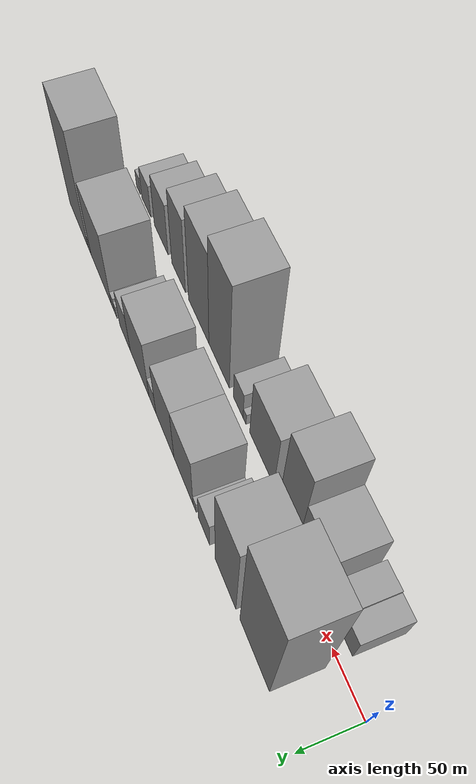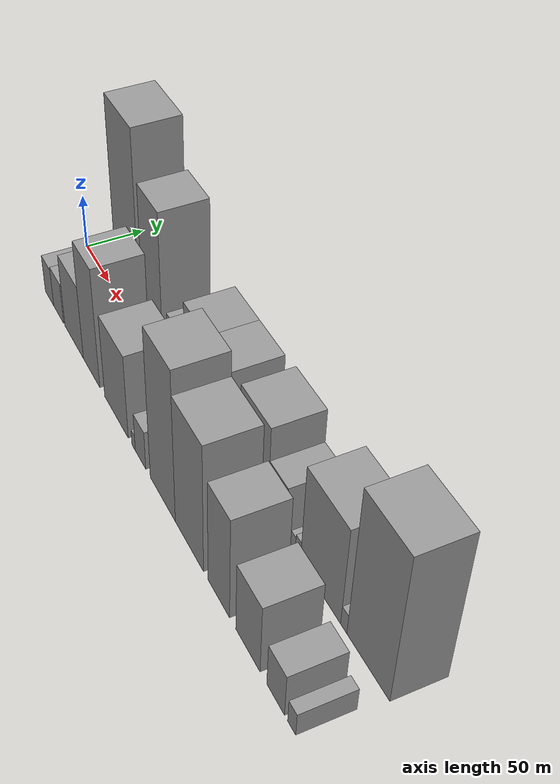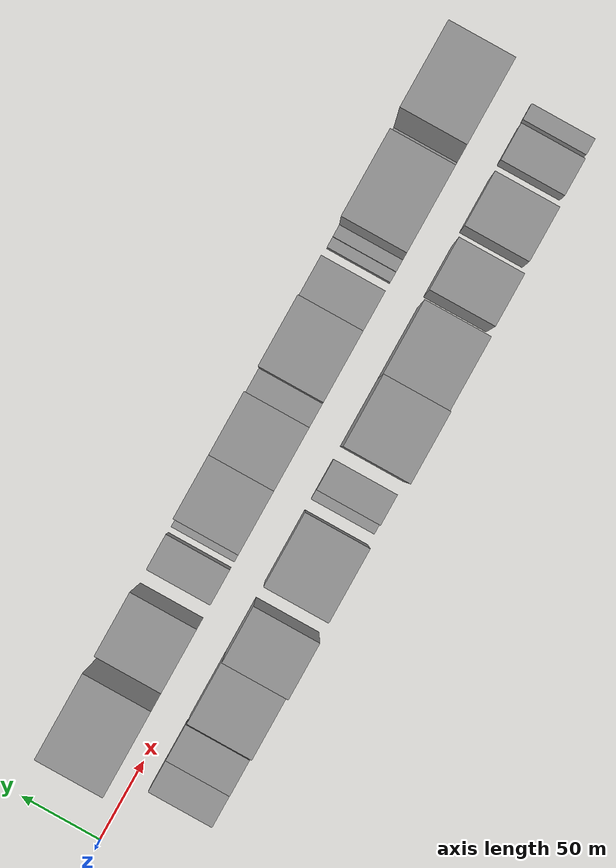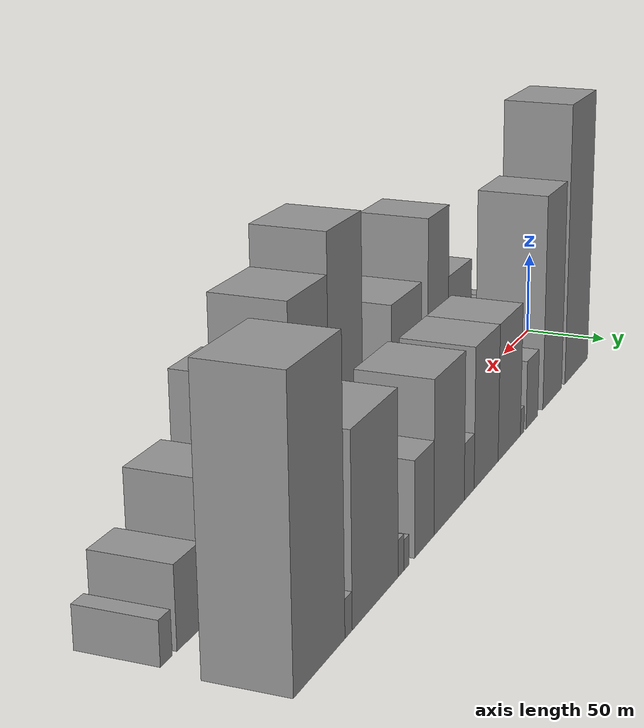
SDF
<sdf version="1.6">
 <world name="default">
  <scene>
   <sky><clouds><speed>12</speed></clouds></sky>
   <ambient>0.4 0.4 0.4 1</ambient>
   <background>0.7 0.7 0.7 1</background>
   <shadows>1</shadows>
  </scene>
  <gravity>0 0 -9.8066</gravity>
  <magnetic_field>6e-06 2.3e-05 -4.2e-05</magnetic_field>
  <physics default="0" name="default_physics" type="ode">
   <ode>
    <solver>
     <type>quick</type>
     <iters>10</iters>
     <sor>1.0</sor>
     <use_dynamic_moi_rescaling>0</use_dynamic_moi_rescaling>
    </solver>
    <constraints>
     <cfm>0</cfm>
     <erp>0.2</erp>
     <contact_max_correcting_vel>100</contact_max_correcting_vel>
     <contact_surface_layer>0.001</contact_surface_layer>
    </constraints>
   </ode>
   <max_step_size>0.004</max_step_size>
   <real_time_factor>1</real_time_factor>
   <real_time_update_rate>250</real_time_update_rate>
  </physics>
  <light name="sun" type="directional">
   <pose>0 0 10 0 0 0</pose>
   <diffuse>0.8 0.8 0.8 1</diffuse>
   <specular>0.2 0.2 0.2 1</specular>
   <attenuation>
    <range>1000</range>
    <constant>0.9</constant>
    <linear>0.01</linear>
    <quadratic>0.001</quadratic>
   </attenuation>
   <direction>-0.5 0.1 -0.9</direction>
  </light>
  <model name="building_1">
   <static>1</static>
   <pose>65.2000 30.0000 0 0.000000 0.000000 1.570796</pose>
   <link name="link">
    <pose>0 0 82.50 0 0 0</pose>
    <collision name="collision"><geometry><box><size>40.0000 50.4000 165.0000</size></box></geometry></collision>
    <visual name="visual">
     <cast_shadows>0</cast_shadows>
     <geometry><box><size>40.0000 50.4000 165.0000</size></box></geometry>
     <material>
      <script>
       <uri>model://grey_wall/materials/scripts</uri>
       <uri>model://grey_wall/materials/textures</uri>
       <name>vrc/grey_wall</name>
      </script>
     </material>
    </visual>
   </link>
  </model>
  <model name="building_2">
   <static>1</static>
   <pose>116.5637 30.0000 0 0.000000 0.000000 1.570796</pose>
   <link name="link">
    <pose>0 0 61.50 0 0 0</pose>
    <collision name="collision"><geometry><box><size>40.0000 38.3274 123.0000</size></box></geometry></collision>
    <visual name="visual">
     <cast_shadows>0</cast_shadows>
     <geometry><box><size>40.0000 38.3274 123.0000</size></box></geometry>
     <material>
      <script>
       <uri>model://grey_wall/materials/scripts</uri>
       <uri>model://grey_wall/materials/textures</uri>
       <name>vrc/grey_wall</name>
      </script>
     </material>
    </visual>
   </link>
  </model>
  <model name="building_3">
   <static>1</static>
   <pose>156.7845 30.0000 0 0.000000 0.000000 1.570796</pose>
   <link name="link">
    <pose>0 0 19.50 0 0 0</pose>
    <collision name="collision"><geometry><box><size>40.0000 22.1142 39.0000</size></box></geometry></collision>
    <visual name="visual">
     <cast_shadows>0</cast_shadows>
     <geometry><box><size>40.0000 22.1142 39.0000</size></box></geometry>
     <material>
      <script>
       <uri>model://grey_wall/materials/scripts</uri>
       <uri>model://grey_wall/materials/textures</uri>
       <name>vrc/grey_wall</name>
      </script>
     </material>
    </visual>
   </link>
  </model>
  <model name="building_4">
   <static>1</static>
   <pose>175.0628 30.0000 0 0.000000 0.000000 1.570796</pose>
   <link name="link">
    <pose>0 0 7.50 0 0 0</pose>
    <collision name="collision"><geometry><box><size>40.0000 6.4425 15.0000</size></box></geometry></collision>
    <visual name="visual">
     <cast_shadows>0</cast_shadows>
     <geometry><box><size>40.0000 6.4425 15.0000</size></box></geometry>
     <material>
      <script>
       <uri>model://grey_wall/materials/scripts</uri>
       <uri>model://grey_wall/materials/textures</uri>
       <name>vrc/grey_wall</name>
      </script>
     </material>
    </visual>
   </link>
  </model>
  <model name="building_5">
   <static>1</static>
   <pose>197.8772 30.0000 0 0.000000 0.000000 1.570796</pose>
   <link name="link">
    <pose>0 0 37.50 0 0 0</pose>
    <collision name="collision"><geometry><box><size>40.0000 39.1862 75.0000</size></box></geometry></collision>
    <visual name="visual">
     <cast_shadows>0</cast_shadows>
     <geometry><box><size>40.0000 39.1862 75.0000</size></box></geometry>
     <material>
      <script>
       <uri>model://grey_wall/materials/scripts</uri>
       <uri>model://grey_wall/materials/textures</uri>
       <name>vrc/grey_wall</name>
      </script>
     </material>
    </visual>
   </link>
  </model>
  <model name="building_6">
   <static>1</static>
   <pose>236.9656 30.0000 0 0.000000 0.000000 1.570796</pose>
   <link name="link">
    <pose>0 0 37.50 0 0 0</pose>
    <collision name="collision"><geometry><box><size>40.0000 38.9905 75.0000</size></box></geometry></collision>
    <visual name="visual">
     <cast_shadows>0</cast_shadows>
     <geometry><box><size>40.0000 38.9905 75.0000</size></box></geometry>
     <material>
      <script>
       <uri>model://grey_wall/materials/scripts</uri>
       <uri>model://grey_wall/materials/textures</uri>
       <name>vrc/grey_wall</name>
      </script>
     </material>
    </visual>
   </link>
  </model>
  <model name="building_7">
   <static>1</static>
   <pose>264.0834 30.0000 0 0.000000 0.000000 1.570796</pose>
   <link name="link">
    <pose>0 0 15.00 0 0 0</pose>
    <collision name="collision"><geometry><box><size>40.0000 15.2452 30.0000</size></box></geometry></collision>
    <visual name="visual">
     <cast_shadows>0</cast_shadows>
     <geometry><box><size>40.0000 15.2452 30.0000</size></box></geometry>
     <material>
      <script>
       <uri>model://grey_wall/materials/scripts</uri>
       <uri>model://grey_wall/materials/textures</uri>
       <name>vrc/grey_wall</name>
      </script>
     </material>
    </visual>
   </link>
  </model>
  <model name="building_8">
   <static>1</static>
   <pose>293.6184 30.0000 0 0.000000 0.000000 1.570796</pose>
   <link name="link">
    <pose>0 0 39.00 0 0 0</pose>
    <collision name="collision"><geometry><box><size>40.0000 43.8249 78.0000</size></box></geometry></collision>
    <visual name="visual">
     <cast_shadows>0</cast_shadows>
     <geometry><box><size>40.0000 43.8249 78.0000</size></box></geometry>
     <material>
      <script>
       <uri>model://grey_wall/materials/scripts</uri>
       <uri>model://grey_wall/materials/textures</uri>
       <name>vrc/grey_wall</name>
      </script>
     </material>
    </visual>
   </link>
  </model>
  <model name="building_9">
   <static>1</static>
   <pose>328.5012 30.0000 0 0.000000 0.000000 1.570796</pose>
   <link name="link">
    <pose>0 0 24.00 0 0 0</pose>
    <collision name="collision"><geometry><box><size>40.0000 25.9407 48.0000</size></box></geometry></collision>
    <visual name="visual">
     <cast_shadows>0</cast_shadows>
     <geometry><box><size>40.0000 25.9407 48.0000</size></box></geometry>
     <material>
      <script>
       <uri>model://grey_wall/materials/scripts</uri>
       <uri>model://grey_wall/materials/textures</uri>
       <name>vrc/grey_wall</name>
      </script>
     </material>
    </visual>
   </link>
  </model>
  <model name="building_10">
   <static>1</static>
   <pose>351.7495 30.0000 0 0.000000 0.000000 1.570796</pose>
   <link name="link">
    <pose>0 0 7.50 0 0 0</pose>
    <collision name="collision"><geometry><box><size>40.0000 6.5559 15.0000</size></box></geometry></collision>
    <visual name="visual">
     <cast_shadows>0</cast_shadows>
     <geometry><box><size>40.0000 6.5559 15.0000</size></box></geometry>
     <material>
      <script>
       <uri>model://grey_wall/materials/scripts</uri>
       <uri>model://grey_wall/materials/textures</uri>
       <name>vrc/grey_wall</name>
      </script>
     </material>
    </visual>
   </link>
  </model>
  <model name="building_11">
   <static>1</static>
   <pose>358.7773 30.0000 0 0.000000 0.000000 1.570796</pose>
   <link name="link">
    <pose>0 0 9.00 0 0 0</pose>
    <collision name="collision"><geometry><box><size>40.0000 7.4996 18.0000</size></box></geometry></collision>
    <visual name="visual">
     <cast_shadows>0</cast_shadows>
     <geometry><box><size>40.0000 7.4996 18.0000</size></box></geometry>
     <material>
      <script>
       <uri>model://grey_wall/materials/scripts</uri>
       <uri>model://grey_wall/materials/textures</uri>
       <name>vrc/grey_wall</name>
      </script>
     </material>
    </visual>
   </link>
  </model>
  <model name="building_12">
   <static>1</static>
   <pose>389.2197 30.0000 0 0.000000 0.000000 1.570796</pose>
   <link name="link">
    <pose>0 0 45.00 0 0 0</pose>
    <collision name="collision"><geometry><box><size>40.0000 53.3851 90.0000</size></box></geometry></collision>
    <visual name="visual">
     <cast_shadows>0</cast_shadows>
     <geometry><box><size>40.0000 53.3851 90.0000</size></box></geometry>
     <material>
      <script>
       <uri>model://grey_wall/materials/scripts</uri>
       <uri>model://grey_wall/materials/textures</uri>
       <name>vrc/grey_wall</name>
      </script>
     </material>
    </visual>
   </link>
  </model>
  <model name="building_13">
   <static>1</static>
   <pose>419.8623 30.0000 0 0.000000 0.000000 1.570796</pose>
   <link name="link">
    <pose>0 0 9.00 0 0 0</pose>
    <collision name="collision"><geometry><box><size>40.0000 7.9001 18.0000</size></box></geometry></collision>
    <visual name="visual">
     <cast_shadows>0</cast_shadows>
     <geometry><box><size>40.0000 7.9001 18.0000</size></box></geometry>
     <material>
      <script>
       <uri>model://grey_wall/materials/scripts</uri>
       <uri>model://grey_wall/materials/textures</uri>
       <name>vrc/grey_wall</name>
      </script>
     </material>
    </visual>
   </link>
  </model>
  <model name="building_14">
   <static>1</static>
   <pose>449.7352 30.0000 0 0.000000 0.000000 1.570796</pose>
   <link name="link">
    <pose>0 0 67.50 0 0 0</pose>
    <collision name="collision"><geometry><box><size>40.0000 51.8457 135.0000</size></box></geometry></collision>
    <visual name="visual">
     <cast_shadows>0</cast_shadows>
     <geometry><box><size>40.0000 51.8457 135.0000</size></box></geometry>
     <material>
      <script>
       <uri>model://grey_wall/materials/scripts</uri>
       <uri>model://grey_wall/materials/textures</uri>
       <name>vrc/grey_wall</name>
      </script>
     </material>
    </visual>
   </link>
  </model>
  <model name="building_15">
   <static>1</static>
   <pose>49.9106 -30.0000 0 0.000000 0.000000 1.570796</pose>
   <link name="link">
    <pose>0 0 18.00 0 0 0</pose>
    <collision name="collision"><geometry><box><size>40.0000 19.8211 36.0000</size></box></geometry></collision>
    <visual name="visual">
     <cast_shadows>0</cast_shadows>
     <geometry><box><size>40.0000 19.8211 36.0000</size></box></geometry>
     <material>
      <script>
       <uri>model://grey_wall/materials/scripts</uri>
       <uri>model://grey_wall/materials/textures</uri>
       <name>vrc/grey_wall</name>
      </script>
     </material>
    </visual>
   </link>
  </model>
  <model name="building_16">
   <static>1</static>
   <pose>71.1314 -30.0000 0 0.000000 0.000000 1.570796</pose>
   <link name="link">
    <pose>0 0 19.50 0 0 0</pose>
    <collision name="collision"><geometry><box><size>40.0000 22.6206 39.0000</size></box></geometry></collision>
    <visual name="visual">
     <cast_shadows>0</cast_shadows>
     <geometry><box><size>40.0000 22.6206 39.0000</size></box></geometry>
     <material>
      <script>
       <uri>model://grey_wall/materials/scripts</uri>
       <uri>model://grey_wall/materials/textures</uri>
       <name>vrc/grey_wall</name>
      </script>
     </material>
    </visual>
   </link>
  </model>
  <model name="building_17">
   <static>1</static>
   <pose>105.7237 -30.0000 0 0.000000 0.000000 1.570796</pose>
   <link name="link">
    <pose>0 0 34.50 0 0 0</pose>
    <collision name="collision"><geometry><box><size>40.0000 40.5639 69.0000</size></box></geometry></collision>
    <visual name="visual">
     <cast_shadows>0</cast_shadows>
     <geometry><box><size>40.0000 40.5639 69.0000</size></box></geometry>
     <material>
      <script>
       <uri>model://grey_wall/materials/scripts</uri>
       <uri>model://grey_wall/materials/textures</uri>
       <name>vrc/grey_wall</name>
      </script>
     </material>
    </visual>
   </link>
  </model>
  <model name="building_18">
   <static>1</static>
   <pose>143.0766 -30.0000 0 0.000000 0.000000 1.570796</pose>
   <link name="link">
    <pose>0 0 55.50 0 0 0</pose>
    <collision name="collision"><geometry><box><size>40.0000 34.1419 111.0000</size></box></geometry></collision>
    <visual name="visual">
     <cast_shadows>0</cast_shadows>
     <geometry><box><size>40.0000 34.1419 111.0000</size></box></geometry>
     <material>
      <script>
       <uri>model://grey_wall/materials/scripts</uri>
       <uri>model://grey_wall/materials/textures</uri>
       <name>vrc/grey_wall</name>
      </script>
     </material>
    </visual>
   </link>
  </model>
  <model name="building_19">
   <static>1</static>
   <pose>192.9764 -30.0000 0 0.000000 0.000000 1.570796</pose>
   <link name="link">
    <pose>0 0 39.00 0 0 0</pose>
    <collision name="collision"><geometry><box><size>40.0000 45.6578 78.0000</size></box></geometry></collision>
    <visual name="visual">
     <cast_shadows>0</cast_shadows>
     <geometry><box><size>40.0000 45.6578 78.0000</size></box></geometry>
     <material>
      <script>
       <uri>model://grey_wall/materials/scripts</uri>
       <uri>model://grey_wall/materials/textures</uri>
       <name>vrc/grey_wall</name>
      </script>
     </material>
    </visual>
   </link>
  </model>
  <model name="building_20">
   <static>1</static>
   <pose>225.8619 -30.0000 0 0.000000 0.000000 1.570796</pose>
   <link name="link">
    <pose>0 0 7.50 0 0 0</pose>
    <collision name="collision"><geometry><box><size>40.0000 6.1132 15.0000</size></box></geometry></collision>
    <visual name="visual">
     <cast_shadows>0</cast_shadows>
     <geometry><box><size>40.0000 6.1132 15.0000</size></box></geometry>
     <material>
      <script>
       <uri>model://grey_wall/materials/scripts</uri>
       <uri>model://grey_wall/materials/textures</uri>
       <name>vrc/grey_wall</name>
      </script>
     </material>
    </visual>
   </link>
  </model>
  <model name="building_21">
   <static>1</static>
   <pose>238.4861 -30.0000 0 0.000000 0.000000 1.570796</pose>
   <link name="link">
    <pose>0 0 18.00 0 0 0</pose>
    <collision name="collision"><geometry><box><size>40.0000 19.1352 36.0000</size></box></geometry></collision>
    <visual name="visual">
     <cast_shadows>0</cast_shadows>
     <geometry><box><size>40.0000 19.1352 36.0000</size></box></geometry>
     <material>
      <script>
       <uri>model://grey_wall/materials/scripts</uri>
       <uri>model://grey_wall/materials/textures</uri>
       <name>vrc/grey_wall</name>
      </script>
     </material>
    </visual>
   </link>
  </model>
  <model name="building_22">
   <static>1</static>
   <pose>277.5426 -30.0000 0 0.000000 0.000000 1.570796</pose>
   <link name="link">
    <pose>0 0 69.00 0 0 0</pose>
    <collision name="collision"><geometry><box><size>40.0000 42.9777 138.0000</size></box></geometry></collision>
    <visual name="visual">
     <cast_shadows>0</cast_shadows>
     <geometry><box><size>40.0000 42.9777 138.0000</size></box></geometry>
     <material>
      <script>
       <uri>model://grey_wall/materials/scripts</uri>
       <uri>model://grey_wall/materials/textures</uri>
       <name>vrc/grey_wall</name>
      </script>
     </material>
    </visual>
   </link>
  </model>
  <model name="building_23">
   <static>1</static>
   <pose>321.5820 -30.0000 0 0.000000 0.000000 1.570796</pose>
   <link name="link">
    <pose>0 0 58.50 0 0 0</pose>
    <collision name="collision"><geometry><box><size>40.0000 45.1010 117.0000</size></box></geometry></collision>
    <visual name="visual">
     <cast_shadows>0</cast_shadows>
     <geometry><box><size>40.0000 45.1010 117.0000</size></box></geometry>
     <material>
      <script>
       <uri>model://grey_wall/materials/scripts</uri>
       <uri>model://grey_wall/materials/textures</uri>
       <name>vrc/grey_wall</name>
      </script>
     </material>
    </visual>
   </link>
  </model>
  <model name="building_24">
   <static>1</static>
   <pose>367.1486 -30.0000 0 0.000000 0.000000 1.570796</pose>
   <link name="link">
    <pose>0 0 46.50 0 0 0</pose>
    <collision name="collision"><geometry><box><size>40.0000 32.0322 93.0000</size></box></geometry></collision>
    <visual name="visual">
     <cast_shadows>0</cast_shadows>
     <geometry><box><size>40.0000 32.0322 93.0000</size></box></geometry>
     <material>
      <script>
       <uri>model://grey_wall/materials/scripts</uri>
       <uri>model://grey_wall/materials/textures</uri>
       <name>vrc/grey_wall</name>
      </script>
     </material>
    </visual>
   </link>
  </model>
  <model name="building_25">
   <static>1</static>
   <pose>409.0450 -30.0000 0 0.000000 0.000000 1.570796</pose>
   <link name="link">
    <pose>0 0 31.50 0 0 0</pose>
    <collision name="collision"><geometry><box><size>40.0000 33.7606 63.0000</size></box></geometry></collision>
    <visual name="visual">
     <cast_shadows>0</cast_shadows>
     <geometry><box><size>40.0000 33.7606 63.0000</size></box></geometry>
     <material>
      <script>
       <uri>model://grey_wall/materials/scripts</uri>
       <uri>model://grey_wall/materials/textures</uri>
       <name>vrc/grey_wall</name>
      </script>
     </material>
    </visual>
   </link>
  </model>
  <model name="building_26">
   <static>1</static>
   <pose>446.4721 -30.0000 0 0.000000 0.000000 1.570796</pose>
   <link name="link">
    <pose>0 0 19.50 0 0 0</pose>
    <collision name="collision"><geometry><box><size>40.0000 23.0937 39.0000</size></box></geometry></collision>
    <visual name="visual">
     <cast_shadows>0</cast_shadows>
     <geometry><box><size>40.0000 23.0937 39.0000</size></box></geometry>
     <material>
      <script>
       <uri>model://grey_wall/materials/scripts</uri>
       <uri>model://grey_wall/materials/textures</uri>
       <name>vrc/grey_wall</name>
      </script>
     </material>
    </visual>
   </link>
  </model>
  <model name="building_27">
   <static>1</static>
   <pose>467.0900 -30.0000 0 0.000000 0.000000 1.570796</pose>
   <link name="link">
    <pose>0 0 10.50 0 0 0</pose>
    <collision name="collision"><geometry><box><size>40.0000 10.1421 21.0000</size></box></geometry></collision>
    <visual name="visual">
     <cast_shadows>0</cast_shadows>
     <geometry><box><size>40.0000 10.1421 21.0000</size></box></geometry>
     <material>
      <script>
       <uri>model://grey_wall/materials/scripts</uri>
       <uri>model://grey_wall/materials/textures</uri>
       <name>vrc/grey_wall</name>
      </script>
     </material>
    </visual>
   </link>
  </model>
 </world>
</sdf>
